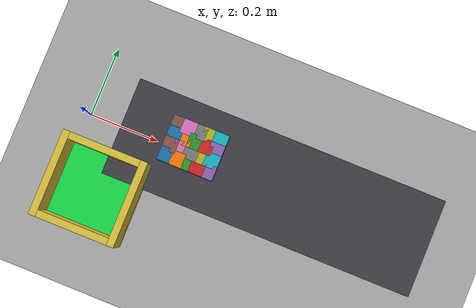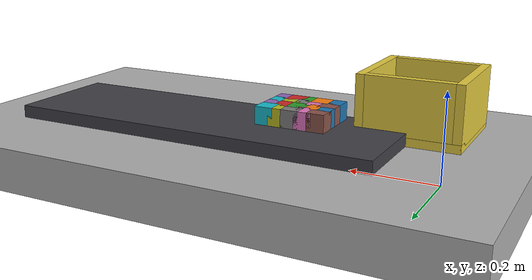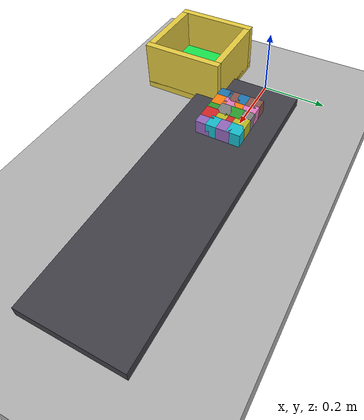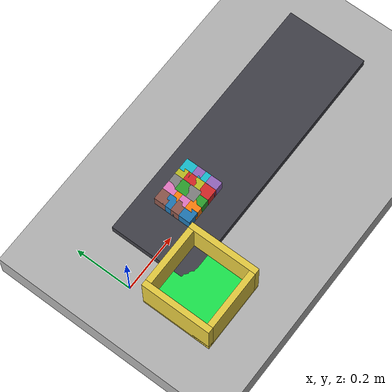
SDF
<?xml version="1.0" ?>
<sdf version="1.7">
  <world name="simple_delivery">
    <gravity>0 0 -9.8</gravity>
    <physics type="ode">
      <max_step_size>0.001</max_step_size>
      <real_time_update_rate>1000</real_time_update_rate>
      <real_time_factor>1.0</real_time_factor>
    </physics>
    <include>
      <uri>model://sun</uri>
    </include>

    <model name="table">
      <static>true</static>
      <pose>0 0 0 0 0 0</pose>
      <link name="base_link">
        <collision name="table_collision">
          <geometry>
            <box>
              <size>3.0 2.0 0.1</size>
            </box>
          </geometry>
        </collision>
        <visual name="table_visual">
          <geometry>
            <box>
              <size>3.0 2.0 0.1</size>
            </box>
          </geometry>
          <material>
            <ambient>0.7 0.7 0.7 1</ambient>
            <diffuse>0.7 0.7 0.7 1</diffuse>
          </material>
        </visual>
      </link>
    </model>

    <model name="conveyor_belt">
      <static>true</static>
      <pose>0.55 0.0 0.04 0 0 0</pose>
      <link name="link">
        <collision name="collision">
          <geometry>
            <box><size>0.9 0.28 0.08</size></box>
          </geometry>
        </collision>
        <visual name="visual">
          <geometry>
            <box><size>0.9 0.28 0.08</size></box>
          </geometry>
          <material>
            <ambient>0.25 0.25 0.28 1</ambient>
            <diffuse>0.25 0.25 0.28 1</diffuse>
          </material>
        </visual>
      </link>
    </model>

    <model name="target_blue_00"><static>true</static><pose>0.25 -0.03 0.12 0 0 0</pose><link name="link"><visual name="visual"><geometry><box><size>0.04 0.04 0.04</size></box></geometry><material><ambient>0.122 0.467 0.706 1</ambient><diffuse>0.122 0.467 0.706 1</diffuse></material></visual></link></model>
    <model name="target_orange_00"><static>true</static><pose>0.28 -0.03 0.12 0 0 0</pose><link name="link"><visual name="visual"><geometry><box><size>0.04 0.04 0.04</size></box></geometry><material><ambient>1 0.498 0.055 1</ambient><diffuse>1 0.498 0.055 1</diffuse></material></visual></link></model>
    <model name="target_green_00"><static>true</static><pose>0.31 -0.03 0.12 0 0 0</pose><link name="link"><visual name="visual"><geometry><box><size>0.04 0.04 0.04</size></box></geometry><material><ambient>0.173 0.627 0.173 1</ambient><diffuse>0.173 0.627 0.173 1</diffuse></material></visual></link></model>
    <model name="target_red_00"><static>true</static><pose>0.34 -0.03 0.12 0 0 0</pose><link name="link"><visual name="visual"><geometry><box><size>0.04 0.04 0.04</size></box></geometry><material><ambient>0.839 0.153 0.157 1</ambient><diffuse>0.839 0.153 0.157 1</diffuse></material></visual></link></model>
    <model name="target_purple_00"><static>true</static><pose>0.37 -0.03 0.12 0 0 0</pose><link name="link"><visual name="visual"><geometry><box><size>0.04 0.04 0.04</size></box></geometry><material><ambient>0.580 0.404 0.741 1</ambient><diffuse>0.580 0.404 0.741 1</diffuse></material></visual></link></model>
    <model name="target_brown_00"><static>true</static><pose>0.25 0.00 0.12 0 0 0</pose><link name="link"><visual name="visual"><geometry><box><size>0.04 0.04 0.04</size></box></geometry><material><ambient>0.549 0.337 0.294 1</ambient><diffuse>0.549 0.337 0.294 1</diffuse></material></visual></link></model>
    <model name="target_pink_00"><static>true</static><pose>0.28 0.00 0.12 0 0 0</pose><link name="link"><visual name="visual"><geometry><box><size>0.04 0.04 0.04</size></box></geometry><material><ambient>0.890 0.467 0.761 1</ambient><diffuse>0.890 0.467 0.761 1</diffuse></material></visual></link></model>
    <model name="target_gray_00"><static>true</static><pose>0.31 0.00 0.12 0 0 0</pose><link name="link"><visual name="visual"><geometry><box><size>0.04 0.04 0.04</size></box></geometry><material><ambient>0.498 0.498 0.498 1</ambient><diffuse>0.498 0.498 0.498 1</diffuse></material></visual></link></model>
    <model name="target_olive_00"><static>true</static><pose>0.34 0.00 0.12 0 0 0</pose><link name="link"><visual name="visual"><geometry><box><size>0.04 0.04 0.04</size></box></geometry><material><ambient>0.737 0.741 0.133 1</ambient><diffuse>0.737 0.741 0.133 1</diffuse></material></visual></link></model>
    <model name="target_cyan_00"><static>true</static><pose>0.37 0.00 0.12 0 0 0</pose><link name="link"><visual name="visual"><geometry><box><size>0.04 0.04 0.04</size></box></geometry><material><ambient>0.090 0.745 0.812 1</ambient><diffuse>0.090 0.745 0.812 1</diffuse></material></visual></link></model>
    <model name="target_blue_01"><static>true</static><pose>0.25 0.03 0.12 0 0 0</pose><link name="link"><visual name="visual"><geometry><box><size>0.04 0.04 0.04</size></box></geometry><material><ambient>0.122 0.467 0.706 1</ambient><diffuse>0.122 0.467 0.706 1</diffuse></material></visual></link></model>
    <model name="target_orange_01"><static>true</static><pose>0.28 0.03 0.12 0 0 0</pose><link name="link"><visual name="visual"><geometry><box><size>0.04 0.04 0.04</size></box></geometry><material><ambient>1 0.498 0.055 1</ambient><diffuse>1 0.498 0.055 1</diffuse></material></visual></link></model>
    <model name="target_green_01"><static>true</static><pose>0.31 0.03 0.12 0 0 0</pose><link name="link"><visual name="visual"><geometry><box><size>0.04 0.04 0.04</size></box></geometry><material><ambient>0.173 0.627 0.173 1</ambient><diffuse>0.173 0.627 0.173 1</diffuse></material></visual></link></model>
    <model name="target_red_01"><static>true</static><pose>0.34 0.03 0.12 0 0 0</pose><link name="link"><visual name="visual"><geometry><box><size>0.04 0.04 0.04</size></box></geometry><material><ambient>0.839 0.153 0.157 1</ambient><diffuse>0.839 0.153 0.157 1</diffuse></material></visual></link></model>
    <model name="target_purple_01"><static>true</static><pose>0.37 0.03 0.12 0 0 0</pose><link name="link"><visual name="visual"><geometry><box><size>0.04 0.04 0.04</size></box></geometry><material><ambient>0.580 0.404 0.741 1</ambient><diffuse>0.580 0.404 0.741 1</diffuse></material></visual></link></model>
    <model name="target_brown_01"><static>true</static><pose>0.25 0.06 0.12 0 0 0</pose><link name="link"><visual name="visual"><geometry><box><size>0.04 0.04 0.04</size></box></geometry><material><ambient>0.549 0.337 0.294 1</ambient><diffuse>0.549 0.337 0.294 1</diffuse></material></visual></link></model>
    <model name="target_pink_01"><static>true</static><pose>0.28 0.06 0.12 0 0 0</pose><link name="link"><visual name="visual"><geometry><box><size>0.04 0.04 0.04</size></box></geometry><material><ambient>0.890 0.467 0.761 1</ambient><diffuse>0.890 0.467 0.761 1</diffuse></material></visual></link></model>
    <model name="target_gray_01"><static>true</static><pose>0.31 0.06 0.12 0 0 0</pose><link name="link"><visual name="visual"><geometry><box><size>0.04 0.04 0.04</size></box></geometry><material><ambient>0.498 0.498 0.498 1</ambient><diffuse>0.498 0.498 0.498 1</diffuse></material></visual></link></model>
    <model name="target_olive_01"><static>true</static><pose>0.34 0.06 0.12 0 0 0</pose><link name="link"><visual name="visual"><geometry><box><size>0.04 0.04 0.04</size></box></geometry><material><ambient>0.737 0.741 0.133 1</ambient><diffuse>0.737 0.741 0.133 1</diffuse></material></visual></link></model>
    <model name="target_cyan_01"><static>true</static><pose>0.37 0.06 0.12 0 0 0</pose><link name="link"><visual name="visual"><geometry><box><size>0.04 0.04 0.04</size></box></geometry><material><ambient>0.090 0.745 0.812 1</ambient><diffuse>0.090 0.745 0.812 1</diffuse></material></visual></link></model>

    <model name="goal_zone">
      <pose>0.10 -0.19 0.055 0 0 0</pose>
      <static>true</static>
      <link name="link">
        <visual name="visual">
          <geometry>
            <box><size>0.2 0.2 0.05</size></box>
          </geometry>
          <material>
            <ambient>0.1 0.9 0.3 1</ambient>
            <diffuse>0.1 0.9 0.3 1</diffuse>
          </material>
        </visual>
      </link>
    </model>

    <model name="box_goal">
      <static>true</static>
      <pose>0.10 -0.19 0 0 0 0</pose>
      <link name="link">
        <collision name="floor_collision">
          <geometry>
            <box><size>0.24 0.24 0.02</size></box>
          </geometry>
          <pose>0 0 0.06 0 0 0</pose>
        </collision>
        <collision name="wall_x_positive_collision">
          <geometry>
            <box><size>0.02 0.24 0.14</size></box>
          </geometry>
          <pose>0.11 0 0.13 0 0 0</pose>
        </collision>
        <collision name="wall_x_negative_collision">
          <geometry>
            <box><size>0.02 0.24 0.14</size></box>
          </geometry>
          <pose>-0.11 0 0.13 0 0 0</pose>
        </collision>
        <collision name="wall_y_positive_collision">
          <geometry>
            <box><size>0.20 0.02 0.14</size></box>
          </geometry>
          <pose>0 0.11 0.13 0 0 0</pose>
        </collision>
        <collision name="wall_y_negative_collision">
          <geometry>
            <box><size>0.20 0.02 0.14</size></box>
          </geometry>
          <pose>0 -0.11 0.13 0 0 0</pose>
        </collision>
        <visual name="floor_visual">
          <geometry>
            <box><size>0.24 0.24 0.02</size></box>
          </geometry>
          <pose>0 0 0.06 0 0 0</pose>
          <material>
            <ambient>0.9 0.8 0.25 1</ambient>
            <diffuse>0.9 0.8 0.25 1</diffuse>
          </material>
        </visual>
        <visual name="wall_x_positive_visual">
          <geometry><box><size>0.02 0.24 0.14</size></box></geometry>
          <pose>0.11 0 0.13 0 0 0</pose>
          <material><ambient>0.9 0.8 0.25 1</ambient><diffuse>0.9 0.8 0.25 1</diffuse></material>
        </visual>
        <visual name="wall_x_negative_visual">
          <geometry><box><size>0.02 0.24 0.14</size></box></geometry>
          <pose>-0.11 0 0.13 0 0 0</pose>
          <material><ambient>0.9 0.8 0.25 1</ambient><diffuse>0.9 0.8 0.25 1</diffuse></material>
        </visual>
        <visual name="wall_y_positive_visual">
          <geometry><box><size>0.20 0.02 0.14</size></box></geometry>
          <pose>0 0.11 0.13 0 0 0</pose>
          <material><ambient>0.9 0.8 0.25 1</ambient><diffuse>0.9 0.8 0.25 1</diffuse></material>
        </visual>
        <visual name="wall_y_negative_visual">
          <geometry><box><size>0.20 0.02 0.14</size></box></geometry>
          <pose>0 -0.11 0.13 0 0 0</pose>
          <material>
            <ambient>0.9 0.8 0.25 1</ambient>
            <diffuse>0.9 0.8 0.25 1</diffuse>
          </material>
        </visual>
      </link>
    </model>

    <model name="camera_mount">
      <static>true</static>
      <pose>0.55 0.15 1.4 0 1.5708 0</pose>
      <link name="camera_link">
        <sensor type="camera" name="color_camera">
          <always_on>true</always_on>
          <update_rate>10</update_rate>
          <visualize>true</visualize>
          <camera name="color">
            <horizontal_fov>1.3962634</horizontal_fov>
            <image>
              <width>640</width>
              <height>480</height>
              <format>R8G8B8</format>
            </image>
            <clip>
              <near>0.02</near>
              <far>10.0</far>
            </clip>
          </camera>
          <plugin name="camera_controller" filename="libgazebo_ros_camera.so">
            <ros>
              <namespace>/camera</namespace>
              <remapping>image_raw:=color/image_raw</remapping>
              <remapping>camera_info:=color/camera_info</remapping>
            </ros>
            <camera_name>color</camera_name>
            <frame_name>camera_link</frame_name>
          </plugin>
        </sensor>
      </link>
    </model>

    <plugin name="gazebo_ros_state" filename="libgazebo_ros_state.so">
      <ros>
        <namespace>/gazebo</namespace>
      </ros>
    </plugin>
  </world>
</sdf>
